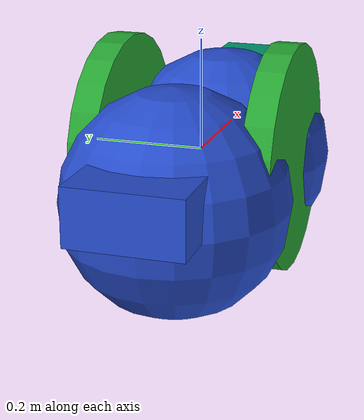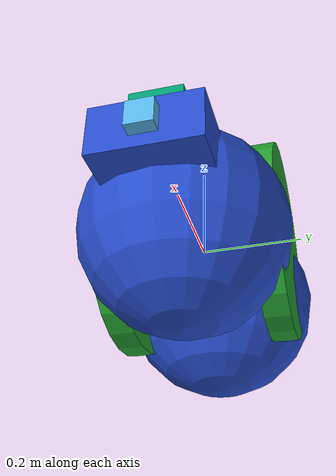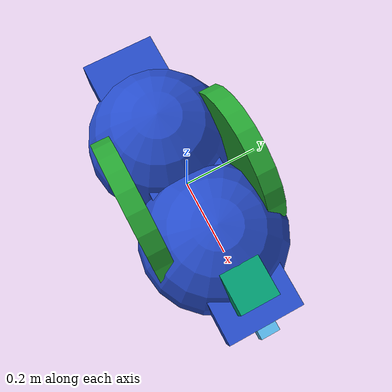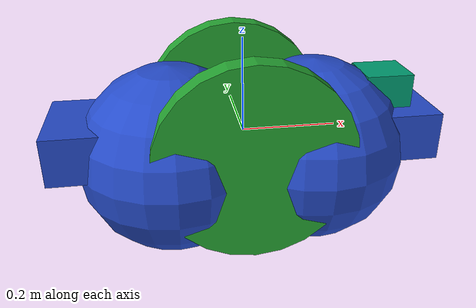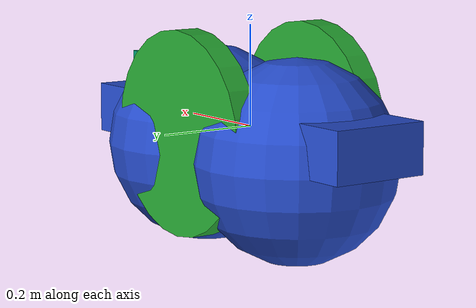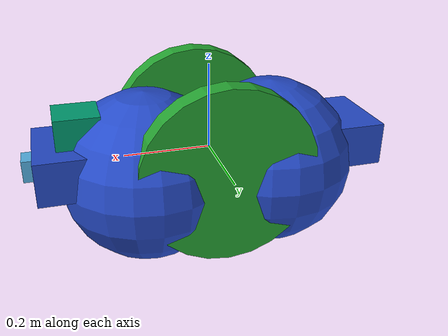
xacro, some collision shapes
<?xml version='1.0'?>

<robot name="my_robot" xmlns:xacro="http://www.ros.org/wiki/xacro">

<xacro:include filename="$(find my_robot)/urdf/my_robot.gazebo" />
  <link name="robot_footprint"></link>

  <joint name="robot_footprint_joint" type="fixed">
    <origin xyz="0 0 0" rpy="0 0 0" />
    <parent link="robot_footprint"/>
    <child link="chassis" />
  </joint>
  <link name='camera'>
  <inertial>
      <mass value="0.1"/>
      <origin xyz="0.05 0.05 0.05" rpy=" 0 0 0"/>
      <inertia
          ixx="1e-6" ixy="0" ixz="0"
          iyy="1e-6" iyz="0"
          izz="1e-6"
      />
    </inertial>

    <collision>
      <origin xyz="0 0 0" rpy=" 0 0 0"/>
      <geometry>
        <box size="0.05 0.05 0.05"/>
      </geometry>
    </collision>

    <visual>
      <origin xyz="0 0 0" rpy=" 0 0 0"/>
      <geometry>
        <box size="0.05 0.05 0.05"/>
      </geometry>
    </visual>
  </link>

<link name='hokuyo'>
  <inertial>
      <mass value="0.1"/>
      <origin xyz="0.1 0.1 0.1" rpy=" 0 0 0"/>
      <inertia
          ixx="1e-6" ixy="0" ixz="0"
          iyy="1e-6" iyz="0"
          izz="1e-6"
      />
    </inertial>

    <collision>
      <origin xyz="0 0 0" rpy=" 0 0 0"/>
      <geometry>
        <box size="0.1 0.1 0.1"/>
      </geometry>
    </collision>

    <visual>
      <origin xyz="0 0 0" rpy=" 0 0 0"/>
      <geometry>
                <mesh filename ="package://my_robot/meshes/hokuyo.dae"/>
    </geometry>
    </visual>
  </link>

  <link name='chassis'>
    <pose>0 0 0.1 0 0 0</pose>

    <inertial>
      <mass value="15.0"/>
      <origin xyz="0.0 0 0" rpy=" 0 0 0"/>
      <inertia
          ixx="0.1" ixy="0" ixz="0"
          iyy="0.1" iyz="0"
          izz="0.1"
      />
    </inertial>

    <collision name='collision'>
      <origin xyz="0 0 0" rpy=" 0 0 0"/>
      <geometry>
        <box size=".8 .2 .1"/>
      </geometry>
    </collision>

    <visual name='chassis_visual'>
      <origin xyz="0 0 0" rpy=" 0 0 0"/>
      <geometry>
        <box size=".8 .2 .1"/>
      </geometry>
       <material name="blue"/>
    </visual>

    <collision name='back_caster_collision'>
      <origin xyz="-0.15 0 -0.05" rpy=" 0 0 0"/>
      <geometry>
        <sphere radius="0.1999"/>
      </geometry>
    </collision>

    <visual name='back_caster_visual'>
      <origin xyz="-0.15 0 -0.05" rpy=" 0 0 0"/>
      <geometry>
        <sphere radius="0.2"/>
      </geometry>
    </visual>

    <collision name='front_caster_collision'>
      <origin xyz="0.15 0 -0.05" rpy=" 0 0 0"/>
      <geometry>
        <sphere radius="0.1999"/>
      </geometry>
    </collision>

    <visual name='front_caster_visual'>
      <origin xyz="0.15 0 -0.05" rpy=" 0 0 0"/>
      <geometry>
        <sphere radius="0.2"/>
      </geometry>
    </visual>

  </link>
<link name='left_wheel'>
<inertial>
      <mass value="1.0"/>
      <origin xyz="0.0 0 0" rpy=" 0 0 0"/>
      <inertia
          ixx="0.1" ixy="0" ixz="0"
          iyy="0.1" iyz="0"
          izz="0.1"
      />
    </inertial>
<visual>
      <origin xyz="0 0 0" rpy="0 1.5707 1.5707"/>
      <geometry>
        <cylinder radius='0.2' length="0.05"/>
      </geometry>
         <material name="bruh"/>
    </visual>

<collision>
      <origin xyz="0 0 0" rpy="0 1.5707 1.5707"/>
      <geometry>
        <cylinder radius='0.2' length="0.05"/>
      </geometry>
    </collision>
</link>
<link name='right_wheel'>
<inertial>
      <mass value="1.0"/>
      <origin xyz="0.0 0 0" rpy=" 0 0 0"/>
      <inertia
          ixx="0.1" ixy="0" ixz="0"
          iyy="0.1" iyz="0"
          izz="0.1"
      />
    </inertial>
<visual>
      <origin xyz="0 0 0" rpy="0 1.5707 1.5707"/>
      <geometry>
        <cylinder radius='0.2' length="0.05"/>
      </geometry>
        <material name="bruh"/>
    </visual>

<collision>
      <origin xyz="0 0 0" rpy="0 1.5707 1.5707"/>
      <geometry>
        <cylinder radius='0.2' length="0.05"/>
      </geometry>
    </collision>
</link>
<joint type="continuous" name="left_wheel_hinge">
    <origin xyz="0 0.15 0" rpy="0 0 0"/>
    <child link="left_wheel"/>
    <parent link="chassis"/>
    <axis xyz="0 1 0" rpy="0 0 0"/>
    <limit effort="10000" velocity="1000"/>
    <dynamics damping="1.0" friction="1.0"/>
  </joint>
<joint type="continuous" name="right_wheel_hinge">
    <origin xyz="0 -0.15 0" rpy="0 0 0"/>
    <child link="right_wheel"/>
    <parent link="chassis"/>
    <axis xyz="0 1 0" rpy="0 0 0"/>
    <limit effort="10000" velocity="1000"/>
    <dynamics damping="1.0" friction="1.0"/>
  </joint>
<joint type="fixed" name="cam">
    <origin xyz="0.4 0 0" rpy="0 0 0"/>
    <child link="camera"/>
    <parent link="chassis"/>
    <axis xyz="0 1 0" rpy="0 0 0"/>
    <limit effort="10000" velocity="1000"/>
    <dynamics damping="1.0" friction="1.0"/>
  </joint>
<joint type="fixed" name="lidar">
    <origin xyz="0.3 0 0.07" rpy="0 0 0"/>
    <child link="hokuyo"/>
    <parent link="chassis"/>
    <axis xyz="0 1 0" rpy="0 0 0"/>

  </joint>
<gazebo reference="chassis">
    <material>Gazebo/Blue</material>
</gazebo>
<gazebo reference="left_wheel">
    <material>Gazebo/Green</material>
</gazebo>
<gazebo reference="right_wheel">
    <material>Gazebo/Green</material>
</gazebo>
</robot>
